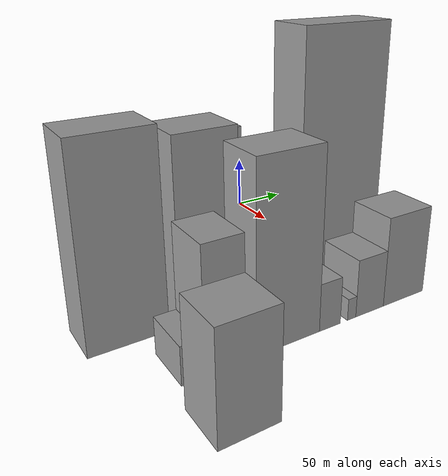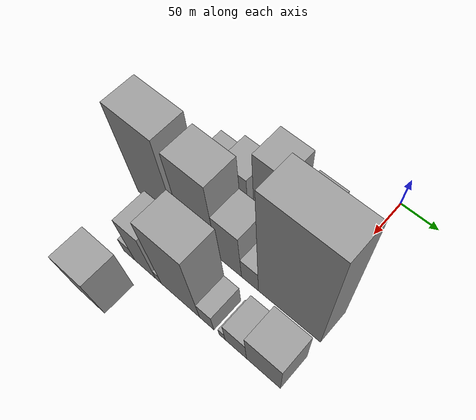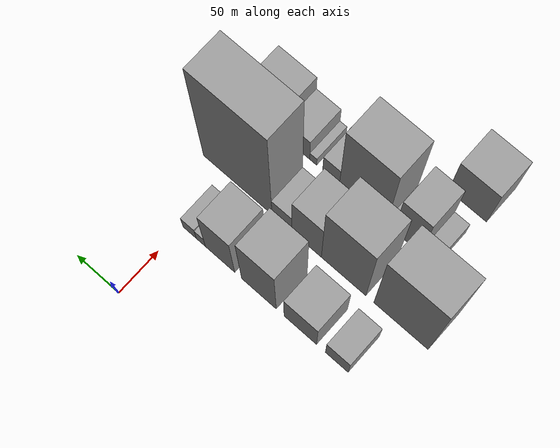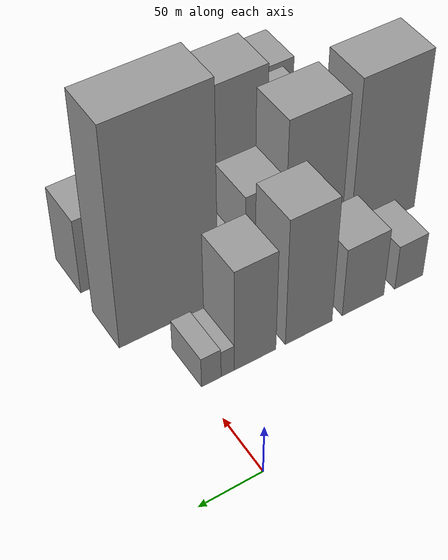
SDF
<sdf version="1.6">
 <world name="default">
  <model name="building_27">
   <static>1</static>
   <pose>100.0000 -179.8913 0 0.000000 0.000000 0.000000</pose>
   <link name="link">
    <pose>0 0 22.50 0 0 0</pose>
    <collision name="collision"><geometry><box><size>40.0000 25.7401 45.0000</size></box></geometry></collision>
    <visual name="visual">
     <cast_shadows>0</cast_shadows>
     <geometry><box><size>40.0000 25.7401 45.0000</size></box></geometry>
     <material>
      <script>
       <uri>model://grey_wall/materials/scripts</uri>
       <uri>model://grey_wall/materials/textures</uri>
       <name>vrc/grey_wall</name>
      </script>
     </material>
    </visual>
   </link>
  </model>
  <model name="building_28">
   <static>1</static>
   <pose>100.0000 -138.4479 0 0.000000 0.000000 0.000000</pose>
   <link name="link">
    <pose>0 0 34.50 0 0 0</pose>
    <collision name="collision"><geometry><box><size>40.0000 37.1466 69.0000</size></box></geometry></collision>
    <visual name="visual">
     <cast_shadows>0</cast_shadows>
     <geometry><box><size>40.0000 37.1466 69.0000</size></box></geometry>
     <material>
      <script>
       <uri>model://grey_wall/materials/scripts</uri>
       <uri>model://grey_wall/materials/textures</uri>
       <name>vrc/grey_wall</name>
      </script>
     </material>
    </visual>
   </link>
  </model>
  <model name="building_29">
   <static>1</static>
   <pose>100.0000 -90.7545 0 0.000000 0.000000 0.000000</pose>
   <link name="link">
    <pose>0 0 63.00 0 0 0</pose>
    <collision name="collision"><geometry><box><size>40.0000 40.2401 126.0000</size></box></geometry></collision>
    <visual name="visual">
     <cast_shadows>0</cast_shadows>
     <geometry><box><size>40.0000 40.2401 126.0000</size></box></geometry>
     <material>
      <script>
       <uri>model://grey_wall/materials/scripts</uri>
       <uri>model://grey_wall/materials/textures</uri>
       <name>vrc/grey_wall</name>
      </script>
     </material>
    </visual>
   </link>
  </model>
  <model name="building_30">
   <static>1</static>
   <pose>100.0000 -45.3814 0 0.000000 0.000000 0.000000</pose>
   <link name="link">
    <pose>0 0 51.00 0 0 0</pose>
    <collision name="collision"><geometry><box><size>40.0000 34.5061 102.0000</size></box></geometry></collision>
    <visual name="visual">
     <cast_shadows>0</cast_shadows>
     <geometry><box><size>40.0000 34.5061 102.0000</size></box></geometry>
     <material>
      <script>
       <uri>model://grey_wall/materials/scripts</uri>
       <uri>model://grey_wall/materials/textures</uri>
       <name>vrc/grey_wall</name>
      </script>
     </material>
    </visual>
   </link>
  </model>
  <model name="building_31">
   <static>1</static>
   <pose>100.0000 -22.7238 0 0.000000 0.000000 0.000000</pose>
   <link name="link">
    <pose>0 0 13.50 0 0 0</pose>
    <collision name="collision"><geometry><box><size>40.0000 10.8093 27.0000</size></box></geometry></collision>
    <visual name="visual">
     <cast_shadows>0</cast_shadows>
     <geometry><box><size>40.0000 10.8093 27.0000</size></box></geometry>
     <material>
      <script>
       <uri>model://grey_wall/materials/scripts</uri>
       <uri>model://grey_wall/materials/textures</uri>
       <name>vrc/grey_wall</name>
      </script>
     </material>
    </visual>
   </link>
  </model>
  <model name="building_32">
   <static>1</static>
   <pose>100.0000 -9.4196 0 0.000000 0.000000 0.000000</pose>
   <link name="link">
    <pose>0 0 15.00 0 0 0</pose>
    <collision name="collision"><geometry><box><size>40.0000 15.7991 30.0000</size></box></geometry></collision>
    <visual name="visual">
     <cast_shadows>0</cast_shadows>
     <geometry><box><size>40.0000 15.7991 30.0000</size></box></geometry>
     <material>
      <script>
       <uri>model://grey_wall/materials/scripts</uri>
       <uri>model://grey_wall/materials/textures</uri>
       <name>vrc/grey_wall</name>
      </script>
     </material>
    </visual>
   </link>
  </model>
  <model name="building_85">
   <static>1</static>
   <pose>160.0000 -200.3898 0 0.000000 0.000000 0.000000</pose>
   <link name="link">
    <pose>0 0 78.00 0 0 0</pose>
    <collision name="collision"><geometry><box><size>40.0000 61.1672 156.0000</size></box></geometry></collision>
    <visual name="visual">
     <cast_shadows>0</cast_shadows>
     <geometry><box><size>40.0000 61.1672 156.0000</size></box></geometry>
     <material>
      <script>
       <uri>model://grey_wall/materials/scripts</uri>
       <uri>model://grey_wall/materials/textures</uri>
       <name>vrc/grey_wall</name>
      </script>
     </material>
    </visual>
   </link>
  </model>
  <model name="building_86">
   <static>1</static>
   <pose>160.0000 -135.2525 0 0.000000 0.000000 0.000000</pose>
   <link name="link">
    <pose>0 0 73.50 0 0 0</pose>
    <collision name="collision"><geometry><box><size>40.0000 51.1075 147.0000</size></box></geometry></collision>
    <visual name="visual">
     <cast_shadows>0</cast_shadows>
     <geometry><box><size>40.0000 51.1075 147.0000</size></box></geometry>
     <material>
      <script>
       <uri>model://grey_wall/materials/scripts</uri>
       <uri>model://grey_wall/materials/textures</uri>
       <name>vrc/grey_wall</name>
      </script>
     </material>
    </visual>
   </link>
  </model>
  <model name="building_87">
   <static>1</static>
   <pose>160.0000 -92.5547 0 0.000000 0.000000 0.000000</pose>
   <link name="link">
    <pose>0 0 46.50 0 0 0</pose>
    <collision name="collision"><geometry><box><size>40.0000 34.2880 93.0000</size></box></geometry></collision>
    <visual name="visual">
     <cast_shadows>0</cast_shadows>
     <geometry><box><size>40.0000 34.2880 93.0000</size></box></geometry>
     <material>
      <script>
       <uri>model://grey_wall/materials/scripts</uri>
       <uri>model://grey_wall/materials/textures</uri>
       <name>vrc/grey_wall</name>
      </script>
     </material>
    </visual>
   </link>
  </model>
  <model name="building_88">
   <static>1</static>
   <pose>160.0000 -63.7799 0 0.000000 0.000000 0.000000</pose>
   <link name="link">
    <pose>0 0 22.50 0 0 0</pose>
    <collision name="collision"><geometry><box><size>40.0000 23.2616 45.0000</size></box></geometry></collision>
    <visual name="visual">
     <cast_shadows>0</cast_shadows>
     <geometry><box><size>40.0000 23.2616 45.0000</size></box></geometry>
     <material>
      <script>
       <uri>model://grey_wall/materials/scripts</uri>
       <uri>model://grey_wall/materials/textures</uri>
       <name>vrc/grey_wall</name>
      </script>
     </material>
    </visual>
   </link>
  </model>
  <model name="building_89">
   <static>1</static>
   <pose>160.0000 -11.2617 0 0.000000 0.000000 0.000000</pose>
   <link name="link">
    <pose>0 0 105.00 0 0 0</pose>
    <collision name="collision"><geometry><box><size>40.0000 81.7748 210.0000</size></box></geometry></collision>
    <visual name="visual">
     <cast_shadows>0</cast_shadows>
     <geometry><box><size>40.0000 81.7748 210.0000</size></box></geometry>
     <material>
      <script>
       <uri>model://grey_wall/materials/scripts</uri>
       <uri>model://grey_wall/materials/textures</uri>
       <name>vrc/grey_wall</name>
      </script>
     </material>
    </visual>
   </link>
  </model>
  <model name="building_136">
   <static>1</static>
   <pose>220.0000 -181.0834 0 0.000000 0.000000 0.000000</pose>
   <link name="link">
    <pose>0 0 15.00 0 0 0</pose>
    <collision name="collision"><geometry><box><size>40.0000 16.9326 30.0000</size></box></geometry></collision>
    <visual name="visual">
     <cast_shadows>0</cast_shadows>
     <geometry><box><size>40.0000 16.9326 30.0000</size></box></geometry>
     <material>
      <script>
       <uri>model://grey_wall/materials/scripts</uri>
       <uri>model://grey_wall/materials/textures</uri>
       <name>vrc/grey_wall</name>
      </script>
     </material>
    </visual>
   </link>
  </model>
  <model name="building_137">
   <static>1</static>
   <pose>220.0000 -157.0367 0 0.000000 0.000000 0.000000</pose>
   <link name="link">
    <pose>0 0 48.00 0 0 0</pose>
    <collision name="collision"><geometry><box><size>40.0000 31.1607 96.0000</size></box></geometry></collision>
    <visual name="visual">
     <cast_shadows>0</cast_shadows>
     <geometry><box><size>40.0000 31.1607 96.0000</size></box></geometry>
     <material>
      <script>
       <uri>model://grey_wall/materials/scripts</uri>
       <uri>model://grey_wall/materials/textures</uri>
       <name>vrc/grey_wall</name>
      </script>
     </material>
    </visual>
   </link>
  </model>
  <model name="building_138">
   <static>1</static>
   <pose>220.0000 -137.1860 0 0.000000 0.000000 0.000000</pose>
   <link name="link">
    <pose>0 0 10.50 0 0 0</pose>
    <collision name="collision"><geometry><box><size>40.0000 8.5408 21.0000</size></box></geometry></collision>
    <visual name="visual">
     <cast_shadows>0</cast_shadows>
     <geometry><box><size>40.0000 8.5408 21.0000</size></box></geometry>
     <material>
      <script>
       <uri>model://grey_wall/materials/scripts</uri>
       <uri>model://grey_wall/materials/textures</uri>
       <name>vrc/grey_wall</name>
      </script>
     </material>
    </visual>
   </link>
  </model>
  <model name="building_139">
   <static>1</static>
   <pose>220.0000 -105.5557 0 0.000000 0.000000 0.000000</pose>
   <link name="link">
    <pose>0 0 72.00 0 0 0</pose>
    <collision name="collision"><geometry><box><size>40.0000 54.7197 144.0000</size></box></geometry></collision>
    <visual name="visual">
     <cast_shadows>0</cast_shadows>
     <geometry><box><size>40.0000 54.7197 144.0000</size></box></geometry>
     <material>
      <script>
       <uri>model://grey_wall/materials/scripts</uri>
       <uri>model://grey_wall/materials/textures</uri>
       <name>vrc/grey_wall</name>
      </script>
     </material>
    </visual>
   </link>
  </model>
  <model name="building_140">
   <static>1</static>
   <pose>220.0000 -68.3398 0 0.000000 0.000000 0.000000</pose>
   <link name="link">
    <pose>0 0 19.50 0 0 0</pose>
    <collision name="collision"><geometry><box><size>40.0000 19.7121 39.0000</size></box></geometry></collision>
    <visual name="visual">
     <cast_shadows>0</cast_shadows>
     <geometry><box><size>40.0000 19.7121 39.0000</size></box></geometry>
     <material>
      <script>
       <uri>model://grey_wall/materials/scripts</uri>
       <uri>model://grey_wall/materials/textures</uri>
       <name>vrc/grey_wall</name>
      </script>
     </material>
    </visual>
   </link>
  </model>
  <model name="building_141">
   <static>1</static>
   <pose>220.0000 -47.3592 0 0.000000 0.000000 0.000000</pose>
   <link name="link">
    <pose>0 0 9.00 0 0 0</pose>
    <collision name="collision"><geometry><box><size>40.0000 8.2490 18.0000</size></box></geometry></collision>
    <visual name="visual">
     <cast_shadows>0</cast_shadows>
     <geometry><box><size>40.0000 8.2490 18.0000</size></box></geometry>
     <material>
      <script>
       <uri>model://grey_wall/materials/scripts</uri>
       <uri>model://grey_wall/materials/textures</uri>
       <name>vrc/grey_wall</name>
      </script>
     </material>
    </visual>
   </link>
  </model>
  <model name="building_142">
   <static>1</static>
   <pose>220.0000 -29.0411 0 0.000000 0.000000 0.000000</pose>
   <link name="link">
    <pose>0 0 24.00 0 0 0</pose>
    <collision name="collision"><geometry><box><size>40.0000 28.3872 48.0000</size></box></geometry></collision>
    <visual name="visual">
     <cast_shadows>0</cast_shadows>
     <geometry><box><size>40.0000 28.3872 48.0000</size></box></geometry>
     <material>
      <script>
       <uri>model://grey_wall/materials/scripts</uri>
       <uri>model://grey_wall/materials/textures</uri>
       <name>vrc/grey_wall</name>
      </script>
     </material>
    </visual>
   </link>
  </model>
  <model name="building_143">
   <static>1</static>
   <pose>220.0000 6.8665 0 0.000000 0.000000 0.000000</pose>
   <link name="link">
    <pose>0 0 37.50 0 0 0</pose>
    <collision name="collision"><geometry><box><size>40.0000 43.4281 75.0000</size></box></geometry></collision>
    <visual name="visual">
     <cast_shadows>0</cast_shadows>
     <geometry><box><size>40.0000 43.4281 75.0000</size></box></geometry>
     <material>
      <script>
       <uri>model://grey_wall/materials/scripts</uri>
       <uri>model://grey_wall/materials/textures</uri>
       <name>vrc/grey_wall</name>
      </script>
     </material>
    </visual>
   </link>
  </model>
  <model name="building_186">
   <static>1</static>
   <pose>280.0000 -175.3497 0 0.000000 0.000000 0.000000</pose>
   <link name="link">
    <pose>0 0 40.50 0 0 0</pose>
    <collision name="collision"><geometry><box><size>40.0000 43.3150 81.0000</size></box></geometry></collision>
    <visual name="visual">
     <cast_shadows>0</cast_shadows>
     <geometry><box><size>40.0000 43.3150 81.0000</size></box></geometry>
     <material>
      <script>
       <uri>model://grey_wall/materials/scripts</uri>
       <uri>model://grey_wall/materials/textures</uri>
       <name>vrc/grey_wall</name>
      </script>
     </material>
    </visual>
   </link>
  </model>
 </world>
</sdf>
